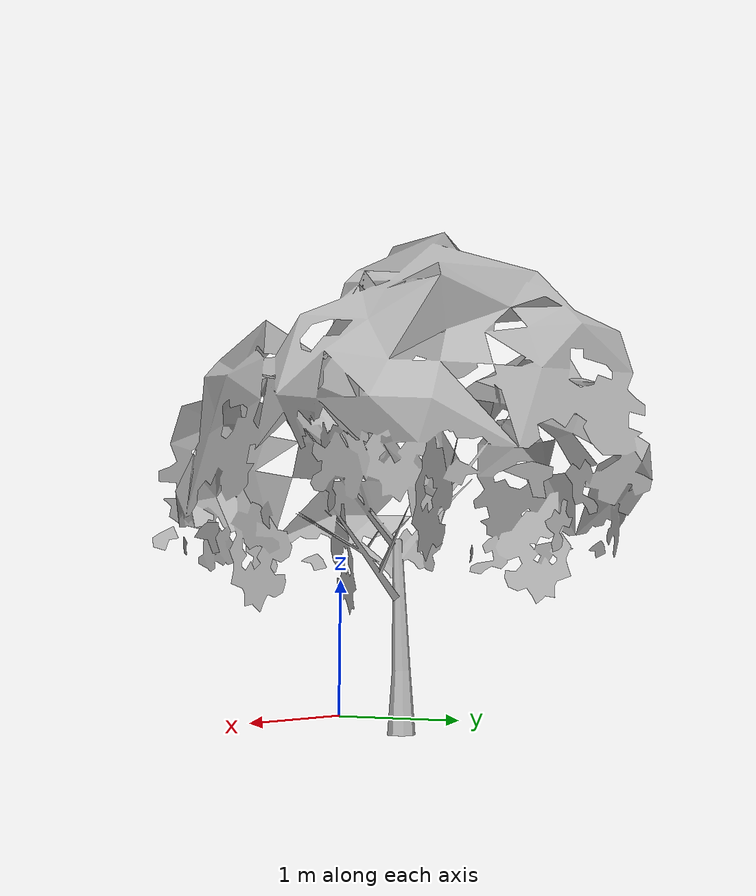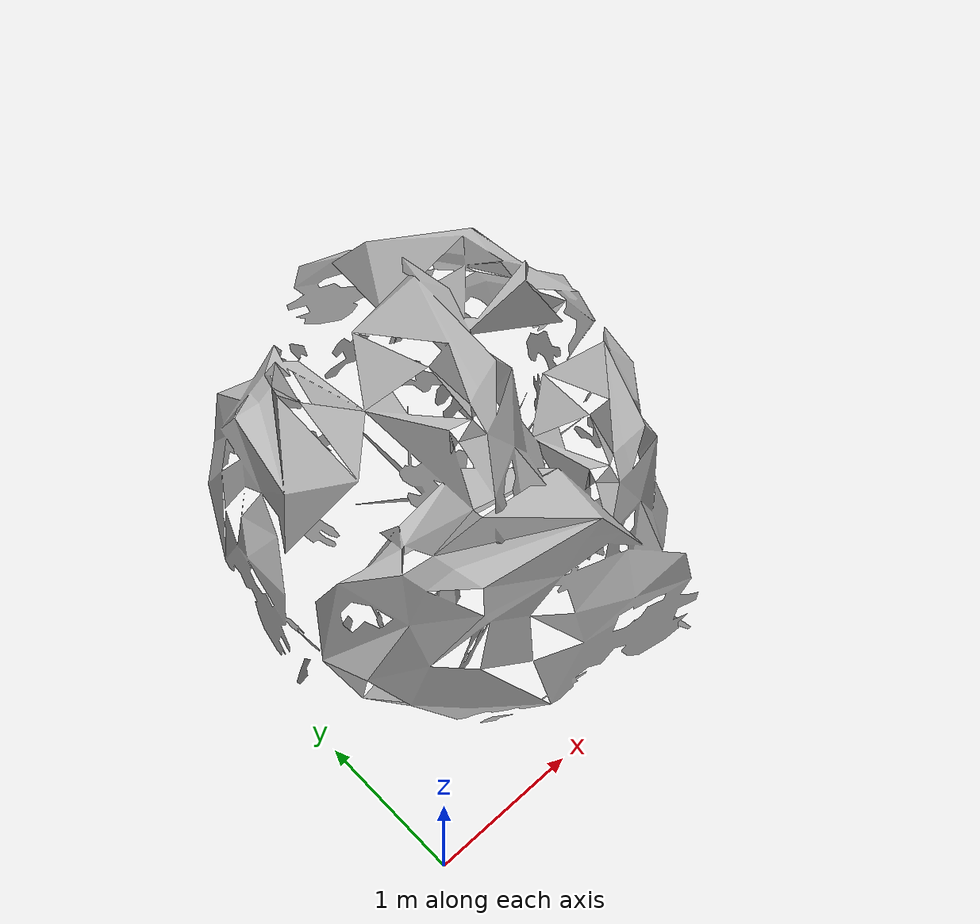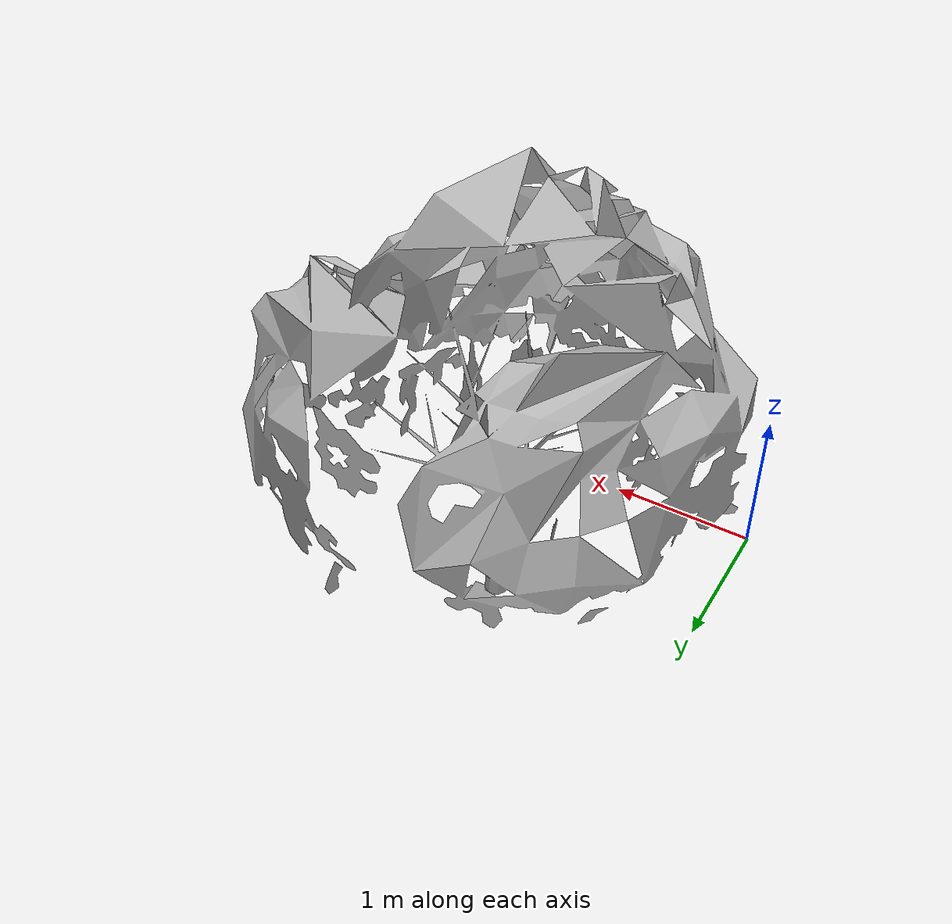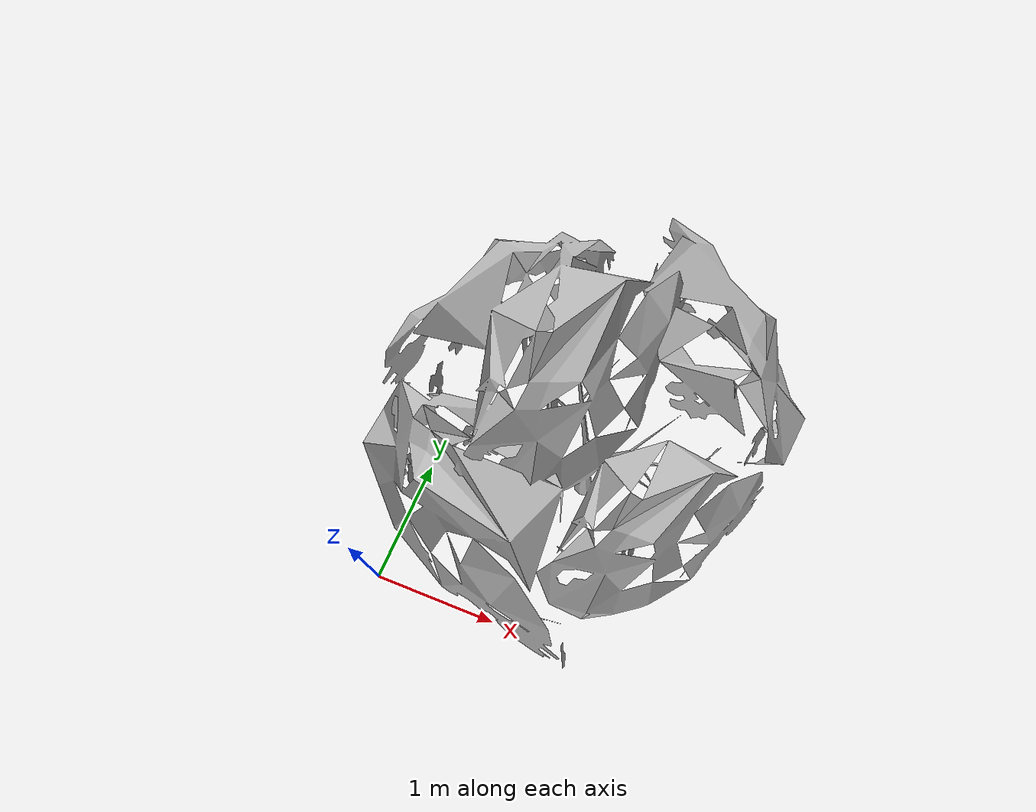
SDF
<?xml version="1.0" ?>
<sdf version="1.5">
  <model name="OliveTree1">
      <static>true</static>
      <link name="OliveTree1_link">
	  <collision name="OliveTree1_collision">
	      <geometry>
		  <mesh>
		    <uri>model://OliveTree1/meshes/OliveTree1.dae</uri>
		    <scale>1 1 1</scale>
		  </mesh>
	      </geometry>
	  </collision>
	  <visual name="OliveTree1_visual">
	      <geometry>
		<mesh>
		  <uri>model://OliveTree1/meshes/OliveTree1.dae</uri>
		  <scale>1 1 1</scale>
		</mesh>
	      </geometry>
	      <cast_shadows>false</cast_shadows>
	  </visual>
      </link>
    </model>
</sdf>
